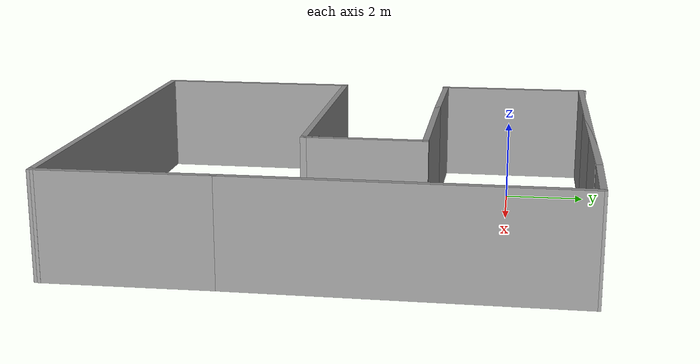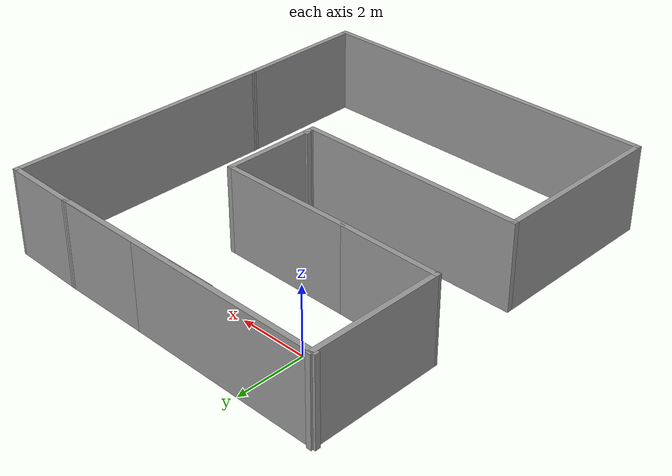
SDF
<?xml version='1.0'?>
<sdf version='1.7'>
  <model name='guided_env.world'>
    <pose>2.89067 -3.90192 0 0 -0 0</pose>
    <link name='Wall_0'>
      <collision name='Wall_0_Collision'>
        <geometry>
          <box>
            <size>4 0.15 2.5</size>
          </box>
        </geometry>
        <pose>0 0 1.25 0 -0 0</pose>
      </collision>
      <visual name='Wall_0_Visual'>
        <pose>0 0 1.25 0 -0 0</pose>
        <geometry>
          <box>
            <size>4 0.15 2.5</size>
          </box>
        </geometry>
        <material>
          <script>
            <uri>file://media/materials/scripts/gazebo.material</uri>
            <name>Gazebo/Grey</name>
          </script>
          <ambient>1 1 1 1</ambient>
        </material>
        <meta>
          <layer>0</layer>
        </meta>
      </visual>
      <pose>-0.415668 2.04192 0 0 -0 0</pose>
    </link>
    <link name='Wall_16'>
      <collision name='Wall_16_Collision'>
        <geometry>
          <box>
            <size>3 0.15 2.5</size>
          </box>
        </geometry>
        <pose>0 0 1.25 0 -0 0</pose>
      </collision>
      <visual name='Wall_16_Visual'>
        <pose>0 0 1.25 0 -0 0</pose>
        <geometry>
          <box>
            <size>3 0.15 2.5</size>
          </box>
        </geometry>
        <material>
          <script>
            <uri>file://media/materials/scripts/gazebo.material</uri>
            <name>Gazebo/Grey</name>
          </script>
          <ambient>1 1 1 1</ambient>
        </material>
        <meta>
          <layer>0</layer>
        </meta>
      </visual>
      <pose>-3.76567 2.05941 0 0 -0 3.12932</pose>
    </link>
    <link name='Wall_17'>
      <collision name='Wall_17_Collision'>
        <geometry>
          <box>
            <size>4 0.15 2.5</size>
          </box>
        </geometry>
        <pose>0 0 1.25 0 -0 0</pose>
      </collision>
      <visual name='Wall_17_Visual'>
        <pose>0 0 1.25 0 -0 0</pose>
        <geometry>
          <box>
            <size>4 0.15 2.5</size>
          </box>
        </geometry>
        <material>
          <script>
            <uri>file://media/materials/scripts/gazebo.material</uri>
            <name>Gazebo/Grey</name>
          </script>
          <ambient>1 1 1 1</ambient>
        </material>
        <meta>
          <layer>0</layer>
        </meta>
      </visual>
      <pose>-5.19067 3.98441 0 0 -0 1.5708</pose>
    </link>
    <link name='Wall_2'>
      <collision name='Wall_2_Collision'>
        <geometry>
          <box>
            <size>0.15 0.15 2.5</size>
          </box>
        </geometry>
        <pose>0 0 1.25 0 -0 0</pose>
      </collision>
      <visual name='Wall_2_Visual'>
        <pose>0 0 1.25 0 -0 0</pose>
        <geometry>
          <box>
            <size>0.15 0.15 2.5</size>
          </box>
        </geometry>
        <material>
          <script>
            <uri>file://media/materials/scripts/gazebo.material</uri>
            <name>Gazebo/Grey</name>
          </script>
          <ambient>1 1 1 1</ambient>
        </material>
        <meta>
          <layer>0</layer>
        </meta>
      </visual>
      <pose>1.44933 -0.538077 0 0 -0 0</pose>
    </link>
    <link name='Wall_22'>
      <collision name='Wall_22_Collision'>
        <geometry>
          <box>
            <size>3 0.15 2.5</size>
          </box>
        </geometry>
        <pose>0 0 1.25 0 -0 0</pose>
      </collision>
      <visual name='Wall_22_Visual'>
        <pose>0 0 1.25 0 -0 0</pose>
        <geometry>
          <box>
            <size>3 0.15 2.5</size>
          </box>
        </geometry>
        <material>
          <script>
            <uri>file://media/materials/scripts/gazebo.material</uri>
            <name>Gazebo/Grey</name>
          </script>
          <ambient>1 1 1 1</ambient>
        </material>
        <meta>
          <layer>0</layer>
        </meta>
      </visual>
      <pose>1.50933 0.616923 0 0 -0 -1.5708</pose>
    </link>
    <link name='Wall_24'>
      <collision name='Wall_24_Collision'>
        <geometry>
          <box>
            <size>2.25 0.15 2.5</size>
          </box>
        </geometry>
        <pose>0 0 1.25 0 -0 0</pose>
      </collision>
      <visual name='Wall_24_Visual'>
        <pose>0 0 1.25 0 -0 0</pose>
        <geometry>
          <box>
            <size>2.25 0.15 2.5</size>
          </box>
        </geometry>
        <material>
          <script>
            <uri>file://media/materials/scripts/gazebo.material</uri>
            <name>Gazebo/Grey</name>
          </script>
          <ambient>1 1 1 1</ambient>
        </material>
        <meta>
          <layer>0</layer>
        </meta>
      </visual>
      <pose>4.13933 5.84941 0 0 -0 -0.016656</pose>
    </link>
    <link name='Wall_25'>
      <collision name='Wall_25_Collision'>
        <geometry>
          <box>
            <size>8 0.15 2.5</size>
          </box>
        </geometry>
        <pose>0 0 1.25 0 -0 0</pose>
      </collision>
      <visual name='Wall_25_Visual'>
        <pose>0 0 1.25 0 -0 0</pose>
        <geometry>
          <box>
            <size>8 0.15 2.5</size>
          </box>
        </geometry>
        <material>
          <script>
            <uri>file://media/materials/scripts/gazebo.material</uri>
            <name>Gazebo/Grey</name>
          </script>
          <ambient>1 1 1 1</ambient>
        </material>
        <meta>
          <layer>0</layer>
        </meta>
      </visual>
      <pose>5.18933 1.90692 0 0 -0 -1.5708</pose>
    </link>
    <link name='Wall_27'>
      <collision name='Wall_27_Collision'>
        <geometry>
          <box>
            <size>6.75 0.15 2.5</size>
          </box>
        </geometry>
        <pose>0 0 1.25 0 -0 0</pose>
      </collision>
      <visual name='Wall_27_Visual'>
        <pose>0 0 1.25 0 -0 0</pose>
        <geometry>
          <box>
            <size>6.75 0.15 2.5</size>
          </box>
        </geometry>
        <material>
          <script>
            <uri>file://media/materials/scripts/gazebo.material</uri>
            <name>Gazebo/Grey</name>
          </script>
          <ambient>1 1 1 1</ambient>
        </material>
        <meta>
          <layer>0</layer>
        </meta>
      </visual>
      <pose>-1.79067 -0.808077 0 0 -0 3.14159</pose>
    </link>
    <link name='Wall_28'>
      <collision name='Wall_28_Collision'>
        <geometry>
          <box>
            <size>5.25 0.15 2.5</size>
          </box>
        </geometry>
        <pose>0 0 1.25 0 -0 0</pose>
      </collision>
      <visual name='Wall_28_Visual'>
        <pose>0 0 1.25 0 -0 0</pose>
        <geometry>
          <box>
            <size>5.25 0.15 2.5</size>
          </box>
        </geometry>
        <material>
          <script>
            <uri>file://media/materials/scripts/gazebo.material</uri>
            <name>Gazebo/Grey</name>
          </script>
          <ambient>1 1 1 1</ambient>
        </material>
        <meta>
          <layer>0</layer>
        </meta>
      </visual>
      <pose>-5.09067 -3.35808 0 0 -0 -1.5708</pose>
    </link>
    <link name='Wall_29'>
      <collision name='Wall_29_Collision'>
        <geometry>
          <box>
            <size>10.5 0.15 2.5</size>
          </box>
        </geometry>
        <pose>0 0 1.25 0 -0 0</pose>
      </collision>
      <visual name='Wall_29_Visual'>
        <pose>0 0 1.25 0 -0 0</pose>
        <geometry>
          <box>
            <size>10.5 0.15 2.5</size>
          </box>
        </geometry>
        <material>
          <script>
            <uri>file://media/materials/scripts/gazebo.material</uri>
            <name>Gazebo/Grey</name>
          </script>
          <ambient>1 1 1 1</ambient>
        </material>
        <meta>
          <layer>0</layer>
        </meta>
      </visual>
      <pose>0.084332 -5.90808 0 0 -0 0</pose>
    </link>
    <link name='Wall_30'>
      <collision name='Wall_30_Collision'>
        <geometry>
          <box>
            <size>4.04063 0.15 2.5</size>
          </box>
        </geometry>
        <pose>0 0 1.25 0 -0 0</pose>
      </collision>
      <visual name='Wall_30_Visual'>
        <pose>0 0 1.25 0 -0 0</pose>
        <geometry>
          <box>
            <size>4.04063 0.15 2.5</size>
          </box>
        </geometry>
        <material>
          <script>
            <uri>file://media/materials/scripts/gazebo.material</uri>
            <name>Gazebo/Grey</name>
          </script>
          <ambient>1 1 1 1</ambient>
        </material>
        <meta>
          <layer>0</layer>
        </meta>
      </visual>
      <pose>5.22433 -3.96308 0 0 -0 1.58879</pose>
    </link>
    <link name='Wall_8'>
      <collision name='Wall_8_Collision'>
        <geometry>
          <box>
            <size>5.25 0.15 2.5</size>
          </box>
        </geometry>
        <pose>0 0 1.25 0 -0 0</pose>
      </collision>
      <visual name='Wall_8_Visual'>
        <pose>0 0 1.25 0 -0 0</pose>
        <geometry>
          <box>
            <size>5.25 0.15 2.5</size>
          </box>
        </geometry>
        <material>
          <script>
            <uri>file://media/materials/scripts/gazebo.material</uri>
            <name>Gazebo/Grey</name>
          </script>
          <ambient>1 1 1 1</ambient>
        </material>
        <meta>
          <layer>0</layer>
        </meta>
      </visual>
      <pose>0.539332 5.84941 0 0 -0 0.006859</pose>
    </link>
    <link name='Wall_9'>
      <collision name='Wall_9_Collision'>
        <geometry>
          <box>
            <size>8.5 0.15 2.5</size>
          </box>
        </geometry>
        <pose>0 0 1.25 0 -0 0</pose>
      </collision>
      <visual name='Wall_9_Visual'>
        <pose>0 0 1.25 0 -0 0</pose>
        <geometry>
          <box>
            <size>8.5 0.15 2.5</size>
          </box>
        </geometry>
        <material>
          <script>
            <uri>file://media/materials/scripts/gazebo.material</uri>
            <name>Gazebo/Grey</name>
          </script>
          <ambient>1 1 1 1</ambient>
        </material>
        <meta>
          <layer>0</layer>
        </meta>
      </visual>
      <pose>-1.08567 5.84941 0 0 -0 3.14159</pose>
    </link>
    <static>1</static>
  </model>
</sdf>
